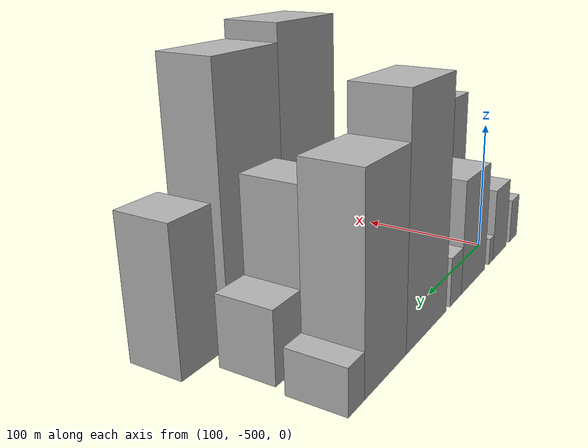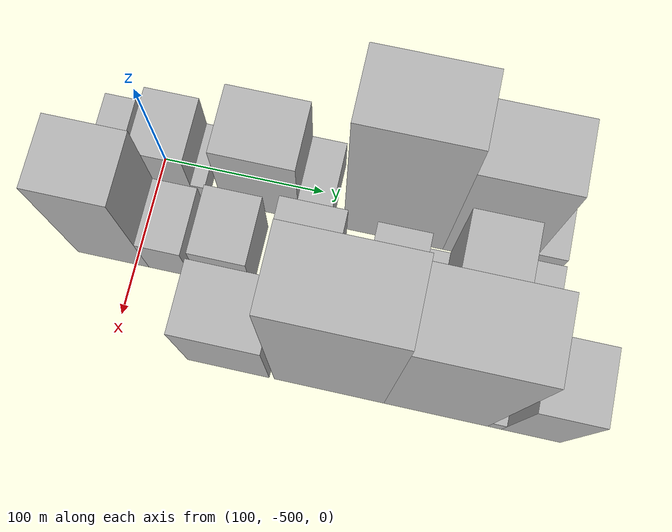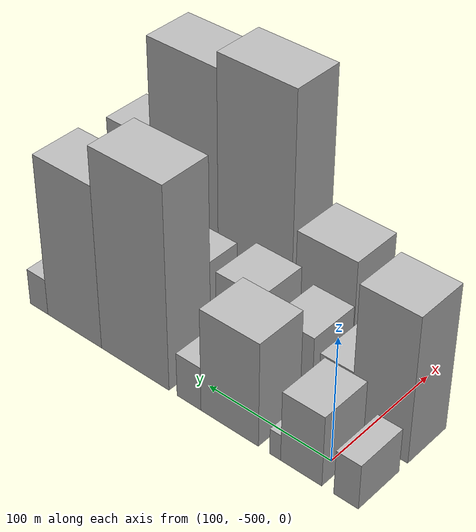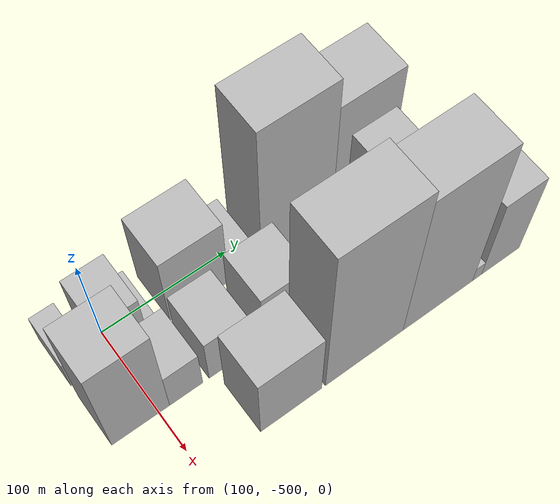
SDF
<sdf version="1.6">
 <world name="default">
  <model name="building_1">
   <static>1</static>
   <pose>100.0000 -526.7104 0 0.000000 0.000000 0.000000</pose>
   <link name="link">
    <pose>0 0 18.00 0 0 0</pose>
    <collision name="collision"><geometry><box><size>40.0000 18.5791 36.0000</size></box></geometry></collision>
    <visual name="visual">
     <cast_shadows>0</cast_shadows>
     <geometry><box><size>40.0000 18.5791 36.0000</size></box></geometry>
     <material>
      <script>
       <uri>model://HANNAS_wall/materials/scripts</uri>
       <uri>model://HANNAS_wall/materials/textures</uri>
       <name>vrc/HANNAS_wall</name>
      </script>
     </material>
    </visual>
   </link>
  </model>
  <model name="building_2">
   <static>1</static>
   <pose>100.0000 -492.3587 0 0.000000 0.000000 0.000000</pose>
   <link name="link">
    <pose>0 0 28.50 0 0 0</pose>
    <collision name="collision"><geometry><box><size>40.0000 32.1243 57.0000</size></box></geometry></collision>
    <visual name="visual">
     <cast_shadows>0</cast_shadows>
     <geometry><box><size>40.0000 32.1243 57.0000</size></box></geometry>
     <material>
      <script>
       <uri>model://HANNAS_wall/materials/scripts</uri>
       <uri>model://HANNAS_wall/materials/textures</uri>
       <name>vrc/HANNAS_wall</name>
      </script>
     </material>
    </visual>
   </link>
  </model>
  <model name="building_3">
   <static>1</static>
   <pose>100.0000 -471.9234 0 0.000000 0.000000 0.000000</pose>
   <link name="link">
    <pose>0 0 10.50 0 0 0</pose>
    <collision name="collision"><geometry><box><size>40.0000 8.7463 21.0000</size></box></geometry></collision>
    <visual name="visual">
     <cast_shadows>0</cast_shadows>
     <geometry><box><size>40.0000 8.7463 21.0000</size></box></geometry>
     <material>
      <script>
       <uri>model://HANNAS_wall/materials/scripts</uri>
       <uri>model://HANNAS_wall/materials/textures</uri>
       <name>vrc/HANNAS_wall</name>
      </script>
     </material>
    </visual>
   </link>
  </model>
  <model name="building_4">
   <static>1</static>
   <pose>100.0000 -434.7010 0 0.000000 0.000000 0.000000</pose>
   <link name="link">
    <pose>0 0 42.00 0 0 0</pose>
    <collision name="collision"><geometry><box><size>40.0000 47.6986 84.0000</size></box></geometry></collision>
    <visual name="visual">
     <cast_shadows>0</cast_shadows>
     <geometry><box><size>40.0000 47.6986 84.0000</size></box></geometry>
     <material>
      <script>
       <uri>model://HANNAS_wall/materials/scripts</uri>
       <uri>model://HANNAS_wall/materials/textures</uri>
       <name>vrc/HANNAS_wall</name>
      </script>
     </material>
    </visual>
   </link>
  </model>
  <model name="building_5">
   <static>1</static>
   <pose>100.0000 -400.5524 0 0.000000 0.000000 0.000000</pose>
   <link name="link">
    <pose>0 0 18.00 0 0 0</pose>
    <collision name="collision"><geometry><box><size>40.0000 20.5985 36.0000</size></box></geometry></collision>
    <visual name="visual">
     <cast_shadows>0</cast_shadows>
     <geometry><box><size>40.0000 20.5985 36.0000</size></box></geometry>
     <material>
      <script>
       <uri>model://HANNAS_wall/materials/scripts</uri>
       <uri>model://HANNAS_wall/materials/textures</uri>
       <name>vrc/HANNAS_wall</name>
      </script>
     </material>
    </visual>
   </link>
  </model>
  <model name="building_6">
   <static>1</static>
   <pose>100.0000 -352.6470 0 0.000000 0.000000 0.000000</pose>
   <link name="link">
    <pose>0 0 81.00 0 0 0</pose>
    <collision name="collision"><geometry><box><size>40.0000 61.2123 162.0000</size></box></geometry></collision>
    <visual name="visual">
     <cast_shadows>0</cast_shadows>
     <geometry><box><size>40.0000 61.2123 162.0000</size></box></geometry>
     <material>
      <script>
       <uri>model://HANNAS_wall/materials/scripts</uri>
       <uri>model://HANNAS_wall/materials/textures</uri>
       <name>vrc/HANNAS_wall</name>
      </script>
     </material>
    </visual>
   </link>
  </model>
  <model name="building_7">
   <static>1</static>
   <pose>100.0000 -296.2472 0 0.000000 0.000000 0.000000</pose>
   <link name="link">
    <pose>0 0 66.00 0 0 0</pose>
    <collision name="collision"><geometry><box><size>40.0000 51.5875 132.0000</size></box></geometry></collision>
    <visual name="visual">
     <cast_shadows>0</cast_shadows>
     <geometry><box><size>40.0000 51.5875 132.0000</size></box></geometry>
     <material>
      <script>
       <uri>model://HANNAS_wall/materials/scripts</uri>
       <uri>model://HANNAS_wall/materials/textures</uri>
       <name>vrc/HANNAS_wall</name>
      </script>
     </material>
    </visual>
   </link>
  </model>
  <model name="building_8">
   <static>1</static>
   <pose>100.0000 -261.6943 0 0.000000 0.000000 0.000000</pose>
   <link name="link">
    <pose>0 0 15.00 0 0 0</pose>
    <collision name="collision"><geometry><box><size>40.0000 17.5183 30.0000</size></box></geometry></collision>
    <visual name="visual">
     <cast_shadows>0</cast_shadows>
     <geometry><box><size>40.0000 17.5183 30.0000</size></box></geometry>
     <material>
      <script>
       <uri>model://HANNAS_wall/materials/scripts</uri>
       <uri>model://HANNAS_wall/materials/textures</uri>
       <name>vrc/HANNAS_wall</name>
      </script>
     </material>
    </visual>
   </link>
  </model>
  <model name="building_31">
   <static>1</static>
   <pose>149.0000 -513.9039 0 0.000000 0.000000 0.000000</pose>
   <link name="link">
    <pose>0 0 58.50 0 0 0</pose>
    <collision name="collision"><geometry><box><size>40.0000 44.1923 117.0000</size></box></geometry></collision>
    <visual name="visual">
     <cast_shadows>0</cast_shadows>
     <geometry><box><size>40.0000 44.1923 117.0000</size></box></geometry>
     <material>
      <script>
       <uri>model://HANNAS_wall/materials/scripts</uri>
       <uri>model://HANNAS_wall/materials/textures</uri>
       <name>vrc/HANNAS_wall</name>
      </script>
     </material>
    </visual>
   </link>
  </model>
  <model name="building_32">
   <static>1</static>
   <pose>149.0000 -478.8391 0 0.000000 0.000000 0.000000</pose>
   <link name="link">
    <pose>0 0 24.00 0 0 0</pose>
    <collision name="collision"><geometry><box><size>40.0000 25.9372 48.0000</size></box></geometry></collision>
    <visual name="visual">
     <cast_shadows>0</cast_shadows>
     <geometry><box><size>40.0000 25.9372 48.0000</size></box></geometry>
     <material>
      <script>
       <uri>model://HANNAS_wall/materials/scripts</uri>
       <uri>model://HANNAS_wall/materials/textures</uri>
       <name>vrc/HANNAS_wall</name>
      </script>
     </material>
    </visual>
   </link>
  </model>
  <model name="building_33">
   <static>1</static>
   <pose>149.0000 -444.4173 0 0.000000 0.000000 0.000000</pose>
   <link name="link">
    <pose>0 0 28.50 0 0 0</pose>
    <collision name="collision"><geometry><box><size>40.0000 32.9065 57.0000</size></box></geometry></collision>
    <visual name="visual">
     <cast_shadows>0</cast_shadows>
     <geometry><box><size>40.0000 32.9065 57.0000</size></box></geometry>
     <material>
      <script>
       <uri>model://HANNAS_wall/materials/scripts</uri>
       <uri>model://HANNAS_wall/materials/textures</uri>
       <name>vrc/HANNAS_wall</name>
      </script>
     </material>
    </visual>
   </link>
  </model>
  <model name="building_34">
   <static>1</static>
   <pose>149.0000 -398.9525 0 0.000000 0.000000 0.000000</pose>
   <link name="link">
    <pose>0 0 33.00 0 0 0</pose>
    <collision name="collision"><geometry><box><size>40.0000 38.0232 66.0000</size></box></geometry></collision>
    <visual name="visual">
     <cast_shadows>0</cast_shadows>
     <geometry><box><size>40.0000 38.0232 66.0000</size></box></geometry>
     <material>
      <script>
       <uri>model://HANNAS_wall/materials/scripts</uri>
       <uri>model://HANNAS_wall/materials/textures</uri>
       <name>vrc/HANNAS_wall</name>
      </script>
     </material>
    </visual>
   </link>
  </model>
  <model name="building_35">
   <static>1</static>
   <pose>149.0000 -371.0271 0 0.000000 0.000000 0.000000</pose>
   <link name="link">
    <pose>0 0 9.00 0 0 0</pose>
    <collision name="collision"><geometry><box><size>40.0000 7.8276 18.0000</size></box></geometry></collision>
    <visual name="visual">
     <cast_shadows>0</cast_shadows>
     <geometry><box><size>40.0000 7.8276 18.0000</size></box></geometry>
     <material>
      <script>
       <uri>model://HANNAS_wall/materials/scripts</uri>
       <uri>model://HANNAS_wall/materials/textures</uri>
       <name>vrc/HANNAS_wall</name>
      </script>
     </material>
    </visual>
   </link>
  </model>
  <model name="building_36">
   <static>1</static>
   <pose>149.0000 -347.7854 0 0.000000 0.000000 0.000000</pose>
   <link name="link">
    <pose>0 0 28.50 0 0 0</pose>
    <collision name="collision"><geometry><box><size>40.0000 30.6557 57.0000</size></box></geometry></collision>
    <visual name="visual">
     <cast_shadows>0</cast_shadows>
     <geometry><box><size>40.0000 30.6557 57.0000</size></box></geometry>
     <material>
      <script>
       <uri>model://HANNAS_wall/materials/scripts</uri>
       <uri>model://HANNAS_wall/materials/textures</uri>
       <name>vrc/HANNAS_wall</name>
      </script>
     </material>
    </visual>
   </link>
  </model>
  <model name="building_37">
   <static>1</static>
   <pose>149.0000 -325.7199 0 0.000000 0.000000 0.000000</pose>
   <link name="link">
    <pose>0 0 13.50 0 0 0</pose>
    <collision name="collision"><geometry><box><size>40.0000 13.4754 27.0000</size></box></geometry></collision>
    <visual name="visual">
     <cast_shadows>0</cast_shadows>
     <geometry><box><size>40.0000 13.4754 27.0000</size></box></geometry>
     <material>
      <script>
       <uri>model://HANNAS_wall/materials/scripts</uri>
       <uri>model://HANNAS_wall/materials/textures</uri>
       <name>vrc/HANNAS_wall</name>
      </script>
     </material>
    </visual>
   </link>
  </model>
  <model name="building_38">
   <static>1</static>
   <pose>149.0000 -301.5186 0 0.000000 0.000000 0.000000</pose>
   <link name="link">
    <pose>0 0 55.50 0 0 0</pose>
    <collision name="collision"><geometry><box><size>40.0000 34.9273 111.0000</size></box></geometry></collision>
    <visual name="visual">
     <cast_shadows>0</cast_shadows>
     <geometry><box><size>40.0000 34.9273 111.0000</size></box></geometry>
     <material>
      <script>
       <uri>model://HANNAS_wall/materials/scripts</uri>
       <uri>model://HANNAS_wall/materials/textures</uri>
       <name>vrc/HANNAS_wall</name>
      </script>
     </material>
    </visual>
   </link>
  </model>
  <model name="building_39">
   <static>1</static>
   <pose>149.0000 -270.4646 0 0.000000 0.000000 0.000000</pose>
   <link name="link">
    <pose>0 0 24.00 0 0 0</pose>
    <collision name="collision"><geometry><box><size>40.0000 27.1806 48.0000</size></box></geometry></collision>
    <visual name="visual">
     <cast_shadows>0</cast_shadows>
     <geometry><box><size>40.0000 27.1806 48.0000</size></box></geometry>
     <material>
      <script>
       <uri>model://HANNAS_wall/materials/scripts</uri>
       <uri>model://HANNAS_wall/materials/textures</uri>
       <name>vrc/HANNAS_wall</name>
      </script>
     </material>
    </visual>
   </link>
  </model>
  <model name="building_61">
   <static>1</static>
   <pose>198.0000 -430.6060 0 0.000000 0.000000 0.000000</pose>
   <link name="link">
    <pose>0 0 42.00 0 0 0</pose>
    <collision name="collision"><geometry><box><size>40.0000 48.9293 84.0000</size></box></geometry></collision>
    <visual name="visual">
     <cast_shadows>0</cast_shadows>
     <geometry><box><size>40.0000 48.9293 84.0000</size></box></geometry>
     <material>
      <script>
       <uri>model://HANNAS_wall/materials/scripts</uri>
       <uri>model://HANNAS_wall/materials/textures</uri>
       <name>vrc/HANNAS_wall</name>
      </script>
     </material>
    </visual>
   </link>
  </model>
  <model name="building_62">
   <static>1</static>
   <pose>198.0000 -370.6193 0 0.000000 0.000000 0.000000</pose>
   <link name="link">
    <pose>0 0 94.50 0 0 0</pose>
    <collision name="collision"><geometry><box><size>40.0000 65.0442 189.0000</size></box></geometry></collision>
    <visual name="visual">
     <cast_shadows>0</cast_shadows>
     <geometry><box><size>40.0000 65.0442 189.0000</size></box></geometry>
     <material>
      <script>
       <uri>model://HANNAS_wall/materials/scripts</uri>
       <uri>model://HANNAS_wall/materials/textures</uri>
       <name>vrc/HANNAS_wall</name>
      </script>
     </material>
    </visual>
   </link>
  </model>
  <model name="building_63">
   <static>1</static>
   <pose>198.0000 -307.6631 0 0.000000 0.000000 0.000000</pose>
   <link name="link">
    <pose>0 0 88.50 0 0 0</pose>
    <collision name="collision"><geometry><box><size>40.0000 60.8682 177.0000</size></box></geometry></collision>
    <visual name="visual">
     <cast_shadows>0</cast_shadows>
     <geometry><box><size>40.0000 60.8682 177.0000</size></box></geometry>
     <material>
      <script>
       <uri>model://HANNAS_wall/materials/scripts</uri>
       <uri>model://HANNAS_wall/materials/textures</uri>
       <name>vrc/HANNAS_wall</name>
      </script>
     </material>
    </visual>
   </link>
  </model>
  <model name="building_64">
   <static>1</static>
   <pose>198.0000 -273.2145 0 0.000000 0.000000 0.000000</pose>
   <link name="link">
    <pose>0 0 9.00 0 0 0</pose>
    <collision name="collision"><geometry><box><size>40.0000 8.0289 18.0000</size></box></geometry></collision>
    <visual name="visual">
     <cast_shadows>0</cast_shadows>
     <geometry><box><size>40.0000 8.0289 18.0000</size></box></geometry>
     <material>
      <script>
       <uri>model://HANNAS_wall/materials/scripts</uri>
       <uri>model://HANNAS_wall/materials/textures</uri>
       <name>vrc/HANNAS_wall</name>
      </script>
     </material>
    </visual>
   </link>
  </model>
  <model name="building_65">
   <static>1</static>
   <pose>198.0000 -252.0980 0 0.000000 0.000000 0.000000</pose>
   <link name="link">
    <pose>0 0 48.00 0 0 0</pose>
    <collision name="collision"><geometry><box><size>40.0000 34.2040 96.0000</size></box></geometry></collision>
    <visual name="visual">
     <cast_shadows>0</cast_shadows>
     <geometry><box><size>40.0000 34.2040 96.0000</size></box></geometry>
     <material>
      <script>
       <uri>model://HANNAS_wall/materials/scripts</uri>
       <uri>model://HANNAS_wall/materials/textures</uri>
       <name>vrc/HANNAS_wall</name>
      </script>
     </material>
    </visual>
   </link>
  </model>
 </world>
</sdf>
